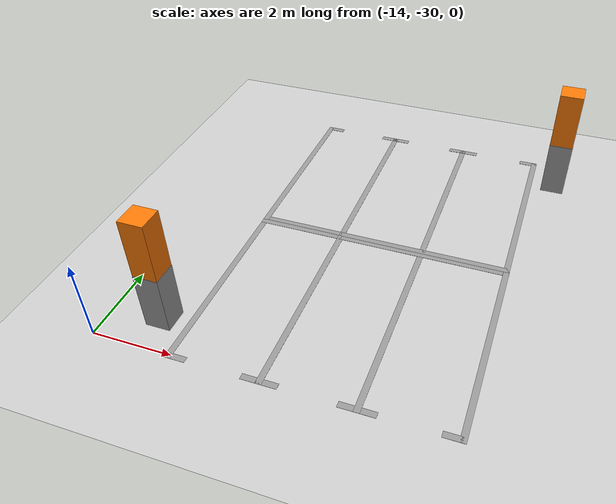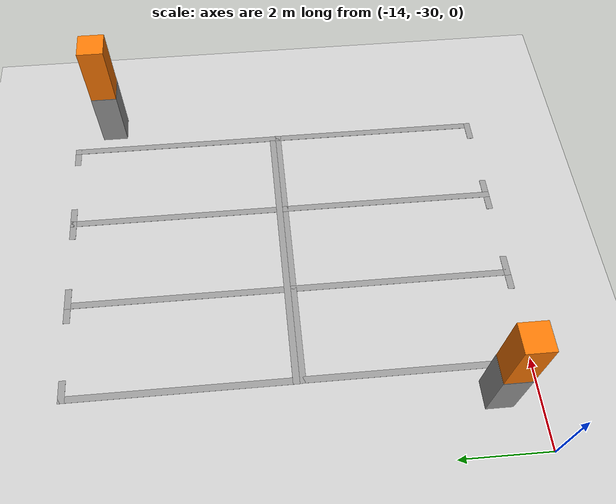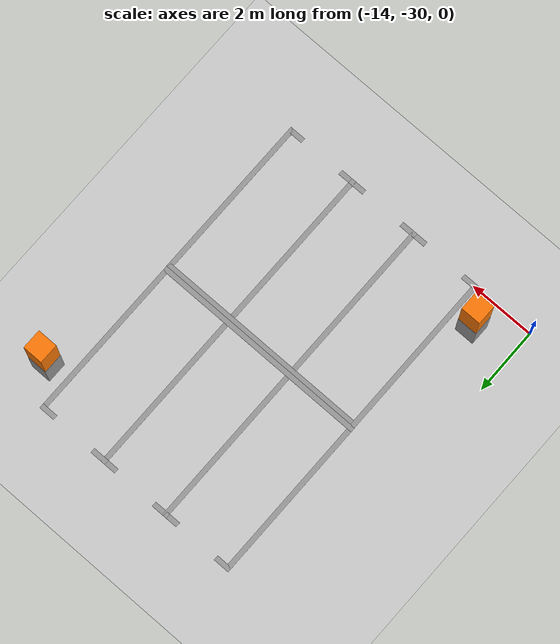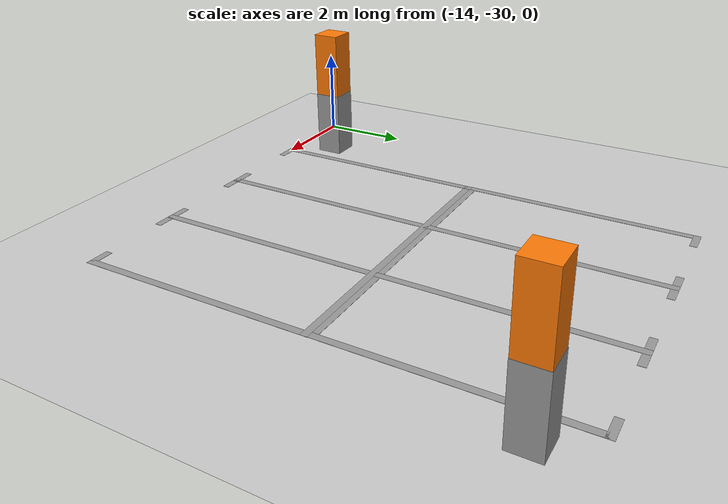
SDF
<sdf version="1.7">
 <world name="default">
  <model name="ground_plane">
   <static>1</static>
   <link name="link">
    <collision name="collision">
     <geometry><plane><normal>0 0 1</normal><size>100 100</size></plane></geometry>
     <surface><friction><ode><mu>100</mu><mu2>50</mu2></ode></friction></surface>
    </collision>
    <visual name="visual">
     <cast_shadows>0</cast_shadows>
     <geometry><plane><normal>0 0 1</normal><size>100 100</size></plane></geometry>
     <material>
      <script><uri>file://media/materials/scripts/gazebo.material</uri><name>Gazebo/Grey</name></script>
     </material>
    </visual>
   </link>
  </model>
  <model name="carport1_4_clone_6">
   <pose>-8.36008 -24.1884 0 0 -0 3.14141</pose>
   <link name="Wall_105">
    <collision name="Wall_105_Collision">
     <geometry><box><size>0.61 0.6 1.5</size></box></geometry>
     <pose>0 0 0.75 0 -0 0</pose>
    </collision>
    <visual name="Wall_105_Visual">
     <pose>0 0 0.75 0 -0 0</pose>
     <geometry><box><size>0.61 0.6 1.5</size></box></geometry>
     <material>
      <script><uri>file://media/materials/scripts/gazebo.material</uri><name>Gazebo/Grey</name></script>
      <ambient>1 1 1 1</ambient>
     </material>
     <meta><layer>0</layer></meta>
    </visual>
    <pose>-3.47407 -3.2865 0 0 -0 0</pose>
   </link>
   <link name="Wall_116">
    <collision name="Wall_116_Collision">
     <geometry><box><size>5.1 0.15 0.005</size></box></geometry>
     <pose>0 0 0.0025 0 -0 0</pose>
    </collision>
    <visual name="Wall_116_Visual">
     <pose>0 0 0.0025 0 -0 0</pose>
     <geometry><box><size>5.1 0.15 0.005</size></box></geometry>
     <material>
      <script><uri>file://media/materials/scripts/gazebo.material</uri><name>Gazebo/Grey</name></script>
      <ambient>1 1 1 1</ambient>
     </material>
     <meta><layer>0</layer></meta>
    </visual>
    <pose>-2.82307 -1.7385 0 0 -0 1.5708</pose>
   </link>
   <link name="Wall_124">
    <collision name="Wall_124_Collision">
     <geometry><box><size>5.1 0.15 0.005</size></box></geometry>
     <pose>0 0 0.0025 0 -0 0</pose>
    </collision>
    <visual name="Wall_124_Visual">
     <pose>0 0 0.0025 0 -0 0</pose>
     <geometry><box><size>5.1 0.15 0.005</size></box></geometry>
     <material>
      <script><uri>file://media/materials/scripts/gazebo.material</uri><name>Gazebo/Grey</name></script>
      <ambient>1 1 1 1</ambient>
     </material>
     <meta><layer>0</layer></meta>
    </visual>
    <pose>3.70393 -1.7305 0 0 -0 1.5708</pose>
   </link>
   <link name="Wall_146">
    <collision name="Wall_146_Collision">
     <geometry><box><size>6.67711 0.15 0.005</size></box></geometry>
     <pose>0 0 0.0025 0 -0 0</pose>
    </collision>
    <visual name="Wall_146_Visual">
     <pose>0 0 0.0025 0 -0 0</pose>
     <geometry><box><size>6.67711 0.15 0.005</size></box></geometry>
     <material>
      <script><uri>file://media/materials/scripts/gazebo.material</uri><name>Gazebo/Grey</name></script>
      <ambient>1 1 1 1</ambient>
     </material>
     <meta><layer>0</layer></meta>
    </visual>
    <pose>0.440428 0.7405 0 0 -0 0.001226</pose>
   </link>
   <link name="Wall_168">
    <collision name="Wall_168_Collision">
     <geometry><box><size>5.1 0.15 0.005</size></box></geometry>
     <pose>0 0 0.0025 0 -0 0</pose>
    </collision>
    <visual name="Wall_168_Visual">
     <pose>0 0 0.0025 0 -0 0</pose>
     <geometry><box><size>5.1 0.15 0.005</size></box></geometry>
     <material>
      <script><uri>file://media/materials/scripts/gazebo.material</uri><name>Gazebo/Grey</name></script>
      <ambient>1 1 1 1</ambient>
     </material>
     <meta><layer>0</layer></meta>
    </visual>
    <pose>-0.64827 -1.73839 0 0 -0 1.57088</pose>
   </link>
   <link name="Wall_173">
    <collision name="Wall_173_Collision">
     <geometry><box><size>5.1 0.15 0.005</size></box></geometry>
     <pose>0 0 0.0025 0 -0 0</pose>
    </collision>
    <visual name="Wall_173_Visual">
     <pose>0 0 0.0025 0 -0 0</pose>
     <geometry><box><size>5.1 0.15 0.005</size></box></geometry>
     <material>
      <script><uri>file://media/materials/scripts/gazebo.material</uri><name>Gazebo/Grey</name></script>
      <ambient>1 1 1 1</ambient>
     </material>
     <meta><layer>0</layer></meta>
    </visual>
    <pose>1.52673 -1.73839 0 0 -0 1.57088</pose>
   </link>
   <link name="Wall_177">
    <collision name="Wall_177_Collision">
     <geometry><box><size>0.6 0.59 3</size></box></geometry>
     <pose>0 0 1.5 0 -0 0</pose>
    </collision>
    <visual name="Wall_177_Visual">
     <pose>0 0 1.5 0 -0 0</pose>
     <geometry><box><size>0.6 0.59 3</size></box></geometry>
     <material>
      <script><uri>file://media/materials/scripts/gazebo.material</uri><name>Gazebo/Grey</name></script>
      <ambient>0.996078 0.47451 0.0196078 1</ambient>
     </material>
     <meta><layer>0</layer></meta>
    </visual>
    <pose>-3.47407 -3.2865 0 0 -0 0</pose>
   </link>
   <link name="Wall_179">
    <collision name="Wall_179_Collision">
     <geometry><box><size>0.5 0.15 0.005</size></box></geometry>
     <pose>0 0 0.0025 0 -0 0</pose>
    </collision>
    <visual name="Wall_179_Visual">
     <pose>0 0 0.0025 0 -0 0</pose>
     <geometry><box><size>0.5 0.15 0.005</size></box></geometry>
     <material>
      <script><uri>file://media/materials/scripts/gazebo.material</uri><name>Gazebo/Grey</name></script>
      <ambient>1 1 1 1</ambient>
     </material>
     <meta><layer>0</layer></meta>
    </visual>
    <pose>-2.64807 -4.2135 0 0 -0 0</pose>
   </link>
   <link name="Wall_181">
    <collision name="Wall_181_Collision">
     <geometry><box><size>0.5 0.15 0.005</size></box></geometry>
     <pose>0 0 0.0025 0 -0 0</pose>
    </collision>
    <visual name="Wall_181_Visual">
     <pose>0 0 0.0025 0 -0 0</pose>
     <geometry><box><size>0.5 0.15 0.005</size></box></geometry>
     <material>
      <script><uri>file://media/materials/scripts/gazebo.material</uri><name>Gazebo/Grey</name></script>
      <ambient>1 1 1 1</ambient>
     </material>
     <meta><layer>0</layer></meta>
    </visual>
    <pose>-0.823072 -4.2135 0 0 -0 3.14159</pose>
   </link>
   <link name="Wall_183">
    <collision name="Wall_183_Collision">
     <geometry><box><size>0.5 0.15 0.005</size></box></geometry>
     <pose>0 0 0.0025 0 -0 0</pose>
    </collision>
    <visual name="Wall_183_Visual">
     <pose>0 0 0.0025 0 -0 0</pose>
     <geometry><box><size>0.5 0.15 0.005</size></box></geometry>
     <material>
      <script><uri>file://media/materials/scripts/gazebo.material</uri><name>Gazebo/Grey</name></script>
      <ambient>1 1 1 1</ambient>
     </material>
     <meta><layer>0</layer></meta>
    </visual>
    <pose>-0.473072 -4.2135 0 0 -0 0</pose>
   </link>
   <link name="Wall_185">
    <collision name="Wall_185_Collision">
     <geometry><box><size>0.5 0.15 0.005</size></box></geometry>
     <pose>0 0 0.0025 0 -0 0</pose>
    </collision>
    <visual name="Wall_185_Visual">
     <pose>0 0 0.0025 0 -0 0</pose>
     <geometry><box><size>0.5 0.15 0.005</size></box></geometry>
     <material>
      <script><uri>file://media/materials/scripts/gazebo.material</uri><name>Gazebo/Grey</name></script>
      <ambient>1 1 1 1</ambient>
     </material>
     <meta><layer>0</layer></meta>
    </visual>
    <pose>1.35193 -4.2135 0 0 -0 3.14159</pose>
   </link>
   <link name="Wall_187">
    <collision name="Wall_187_Collision">
     <geometry><box><size>0.5 0.15 0.005</size></box></geometry>
     <pose>0 0 0.0025 0 -0 0</pose>
    </collision>
    <visual name="Wall_187_Visual">
     <pose>0 0 0.0025 0 -0 0</pose>
     <geometry><box><size>0.5 0.15 0.005</size></box></geometry>
     <material>
      <script><uri>file://media/materials/scripts/gazebo.material</uri><name>Gazebo/Grey</name></script>
      <ambient>1 1 1 1</ambient>
     </material>
     <meta><layer>0</layer></meta>
    </visual>
    <pose>1.70193 -4.2135 0 0 -0 0</pose>
   </link>
   <link name="Wall_189">
    <collision name="Wall_189_Collision">
     <geometry><box><size>0.5 0.15 0.005</size></box></geometry>
     <pose>0 0 0.0025 0 -0 0</pose>
    </collision>
    <visual name="Wall_189_Visual">
     <pose>0 0 0.0025 0 -0 0</pose>
     <geometry><box><size>0.5 0.15 0.005</size></box></geometry>
     <material>
      <script><uri>file://media/materials/scripts/gazebo.material</uri><name>Gazebo/Grey</name></script>
      <ambient>1 1 1 1</ambient>
     </material>
     <meta><layer>0</layer></meta>
    </visual>
    <pose>3.52893 -4.2055 0 0 -0 3.14159</pose>
   </link>
   <static>1</static>
  </model>
  <model name="carport1_3_clone_clone_6">
   <pose>-9.23543 -25.8031 0 0 -0 0</pose>
   <link name="Wall_105">
    <collision name="Wall_105_Collision">
     <geometry><box><size>0.61 0.6 1.5</size></box></geometry>
     <pose>0 0 0.75 0 -0 0</pose>
    </collision>
    <visual name="Wall_105_Visual">
     <pose>0 0 0.75 0 -0 0</pose>
     <geometry><box><size>0.61 0.6 1.5</size></box></geometry>
     <material>
      <script><uri>file://media/materials/scripts/gazebo.material</uri><name>Gazebo/Grey</name></script>
      <ambient>1 1 1 1</ambient>
     </material>
     <meta><layer>0</layer></meta>
    </visual>
    <pose>-3.47407 -3.2865 0 0 -0 0</pose>
   </link>
   <link name="Wall_116">
    <collision name="Wall_116_Collision">
     <geometry><box><size>5.1 0.15 0.005</size></box></geometry>
     <pose>0 0 0.0025 0 -0 0</pose>
    </collision>
    <visual name="Wall_116_Visual">
     <pose>0 0 0.0025 0 -0 0</pose>
     <geometry><box><size>5.1 0.15 0.005</size></box></geometry>
     <material>
      <script><uri>file://media/materials/scripts/gazebo.material</uri><name>Gazebo/Grey</name></script>
      <ambient>1 1 1 1</ambient>
     </material>
     <meta><layer>0</layer></meta>
    </visual>
    <pose>-2.82307 -1.7385 0 0 -0 1.5708</pose>
   </link>
   <link name="Wall_124">
    <collision name="Wall_124_Collision">
     <geometry><box><size>5.1 0.15 0.005</size></box></geometry>
     <pose>0 0 0.0025 0 -0 0</pose>
    </collision>
    <visual name="Wall_124_Visual">
     <pose>0 0 0.0025 0 -0 0</pose>
     <geometry><box><size>5.1 0.15 0.005</size></box></geometry>
     <material>
      <script><uri>file://media/materials/scripts/gazebo.material</uri><name>Gazebo/Grey</name></script>
      <ambient>1 1 1 1</ambient>
     </material>
     <meta><layer>0</layer></meta>
    </visual>
    <pose>3.70393 -1.7305 0 0 -0 1.5708</pose>
   </link>
   <link name="Wall_146">
    <collision name="Wall_146_Collision">
     <geometry><box><size>6.67711 0.15 0.005</size></box></geometry>
     <pose>0 0 0.0025 0 -0 0</pose>
    </collision>
    <visual name="Wall_146_Visual">
     <pose>0 0 0.0025 0 -0 0</pose>
     <geometry><box><size>6.67711 0.15 0.005</size></box></geometry>
     <material>
      <script><uri>file://media/materials/scripts/gazebo.material</uri><name>Gazebo/Grey</name></script>
      <ambient>1 1 1 1</ambient>
     </material>
     <meta><layer>0</layer></meta>
    </visual>
    <pose>0.440428 0.7405 0 0 -0 0.001226</pose>
   </link>
   <link name="Wall_168">
    <collision name="Wall_168_Collision">
     <geometry><box><size>5.1 0.15 0.005</size></box></geometry>
     <pose>0 0 0.0025 0 -0 0</pose>
    </collision>
    <visual name="Wall_168_Visual">
     <pose>0 0 0.0025 0 -0 0</pose>
     <geometry><box><size>5.1 0.15 0.005</size></box></geometry>
     <material>
      <script><uri>file://media/materials/scripts/gazebo.material</uri><name>Gazebo/Grey</name></script>
      <ambient>1 1 1 1</ambient>
     </material>
     <meta><layer>0</layer></meta>
    </visual>
    <pose>-0.64827 -1.73839 0 0 -0 1.57088</pose>
   </link>
   <link name="Wall_173">
    <collision name="Wall_173_Collision">
     <geometry><box><size>5.1 0.15 0.005</size></box></geometry>
     <pose>0 0 0.0025 0 -0 0</pose>
    </collision>
    <visual name="Wall_173_Visual">
     <pose>0 0 0.0025 0 -0 0</pose>
     <geometry><box><size>5.1 0.15 0.005</size></box></geometry>
     <material>
      <script><uri>file://media/materials/scripts/gazebo.material</uri><name>Gazebo/Grey</name></script>
      <ambient>1 1 1 1</ambient>
     </material>
     <meta><layer>0</layer></meta>
    </visual>
    <pose>1.52673 -1.73839 0 0 -0 1.57088</pose>
   </link>
   <link name="Wall_177">
    <collision name="Wall_177_Collision">
     <geometry><box><size>0.6 0.59 3</size></box></geometry>
     <pose>0 0 1.5 0 -0 0</pose>
    </collision>
    <visual name="Wall_177_Visual">
     <pose>0 0 1.5 0 -0 0</pose>
     <geometry><box><size>0.6 0.59 3</size></box></geometry>
     <material>
      <script><uri>file://media/materials/scripts/gazebo.material</uri><name>Gazebo/Grey</name></script>
      <ambient>0.996078 0.47451 0.0196078 1</ambient>
     </material>
     <meta><layer>0</layer></meta>
    </visual>
    <pose>-3.47407 -3.2865 0 0 -0 0</pose>
   </link>
   <link name="Wall_179">
    <collision name="Wall_179_Collision">
     <geometry><box><size>0.5 0.15 0.005</size></box></geometry>
     <pose>0 0 0.0025 0 -0 0</pose>
    </collision>
    <visual name="Wall_179_Visual">
     <pose>0 0 0.0025 0 -0 0</pose>
     <geometry><box><size>0.5 0.15 0.005</size></box></geometry>
     <material>
      <script><uri>file://media/materials/scripts/gazebo.material</uri><name>Gazebo/Grey</name></script>
      <ambient>1 1 1 1</ambient>
     </material>
     <meta><layer>0</layer></meta>
    </visual>
    <pose>-2.64807 -4.2135 0 0 -0 0</pose>
   </link>
   <link name="Wall_181">
    <collision name="Wall_181_Collision">
     <geometry><box><size>0.5 0.15 0.005</size></box></geometry>
     <pose>0 0 0.0025 0 -0 0</pose>
    </collision>
    <visual name="Wall_181_Visual">
     <pose>0 0 0.0025 0 -0 0</pose>
     <geometry><box><size>0.5 0.15 0.005</size></box></geometry>
     <material>
      <script><uri>file://media/materials/scripts/gazebo.material</uri><name>Gazebo/Grey</name></script>
      <ambient>1 1 1 1</ambient>
     </material>
     <meta><layer>0</layer></meta>
    </visual>
    <pose>-0.823072 -4.2135 0 0 -0 3.14159</pose>
   </link>
   <link name="Wall_183">
    <collision name="Wall_183_Collision">
     <geometry><box><size>0.5 0.15 0.005</size></box></geometry>
     <pose>0 0 0.0025 0 -0 0</pose>
    </collision>
    <visual name="Wall_183_Visual">
     <pose>0 0 0.0025 0 -0 0</pose>
     <geometry><box><size>0.5 0.15 0.005</size></box></geometry>
     <material>
      <script><uri>file://media/materials/scripts/gazebo.material</uri><name>Gazebo/Grey</name></script>
      <ambient>1 1 1 1</ambient>
     </material>
     <meta><layer>0</layer></meta>
    </visual>
    <pose>-0.473072 -4.2135 0 0 -0 0</pose>
   </link>
   <link name="Wall_185">
    <collision name="Wall_185_Collision">
     <geometry><box><size>0.5 0.15 0.005</size></box></geometry>
     <pose>0 0 0.0025 0 -0 0</pose>
    </collision>
    <visual name="Wall_185_Visual">
     <pose>0 0 0.0025 0 -0 0</pose>
     <geometry><box><size>0.5 0.15 0.005</size></box></geometry>
     <material>
      <script><uri>file://media/materials/scripts/gazebo.material</uri><name>Gazebo/Grey</name></script>
      <ambient>1 1 1 1</ambient>
     </material>
     <meta><layer>0</layer></meta>
    </visual>
    <pose>1.35193 -4.2135 0 0 -0 3.14159</pose>
   </link>
   <link name="Wall_187">
    <collision name="Wall_187_Collision">
     <geometry><box><size>0.5 0.15 0.005</size></box></geometry>
     <pose>0 0 0.0025 0 -0 0</pose>
    </collision>
    <visual name="Wall_187_Visual">
     <pose>0 0 0.0025 0 -0 0</pose>
     <geometry><box><size>0.5 0.15 0.005</size></box></geometry>
     <material>
      <script><uri>file://media/materials/scripts/gazebo.material</uri><name>Gazebo/Grey</name></script>
      <ambient>1 1 1 1</ambient>
     </material>
     <meta><layer>0</layer></meta>
    </visual>
    <pose>1.70193 -4.2135 0 0 -0 0</pose>
   </link>
   <link name="Wall_189">
    <collision name="Wall_189_Collision">
     <geometry><box><size>0.5 0.15 0.005</size></box></geometry>
     <pose>0 0 0.0025 0 -0 0</pose>
    </collision>
    <visual name="Wall_189_Visual">
     <pose>0 0 0.0025 0 -0 0</pose>
     <geometry><box><size>0.5 0.15 0.005</size></box></geometry>
     <material>
      <script><uri>file://media/materials/scripts/gazebo.material</uri><name>Gazebo/Grey</name></script>
      <ambient>1 1 1 1</ambient>
     </material>
     <meta><layer>0</layer></meta>
    </visual>
    <pose>3.52893 -4.2055 0 0 -0 3.14159</pose>
   </link>
   <static>1</static>
  </model>
 </world>
</sdf>
